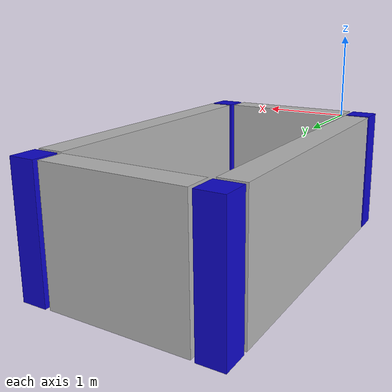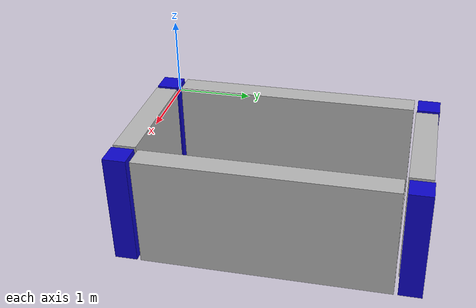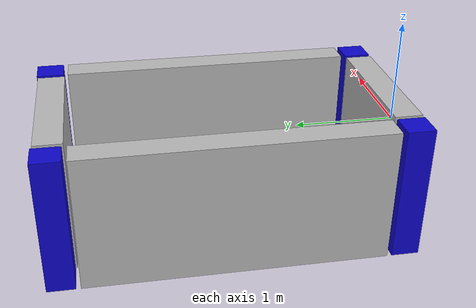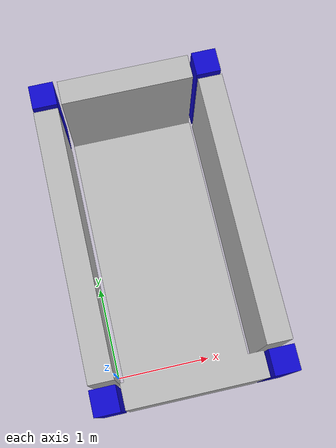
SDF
<?xml version="1.0"?>
<sdf version="1.5">
  <model name="uuv_apriltag_tank">
    <static>true</static>
    <link name="link">
      <visual name="visual">
        <geometry>
          <mesh>
            <uri>model://uuv_apriltag_tank/meshes/tank_with_apriltag_ground_true_scale.dae</uri>
          </mesh>
        </geometry>
      </visual>
    </link>
  </model>
</sdf>
